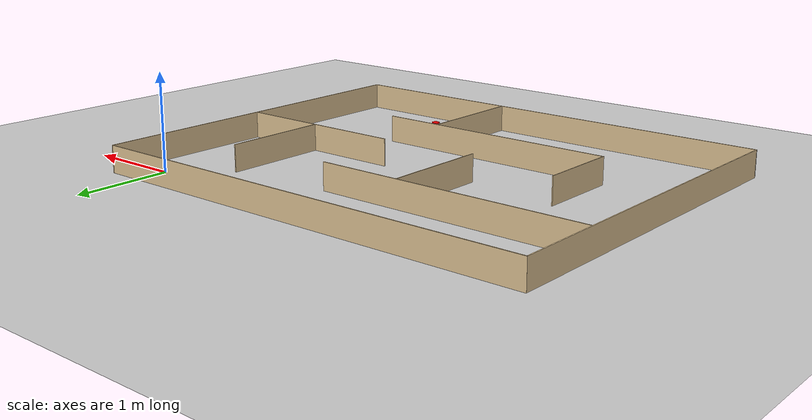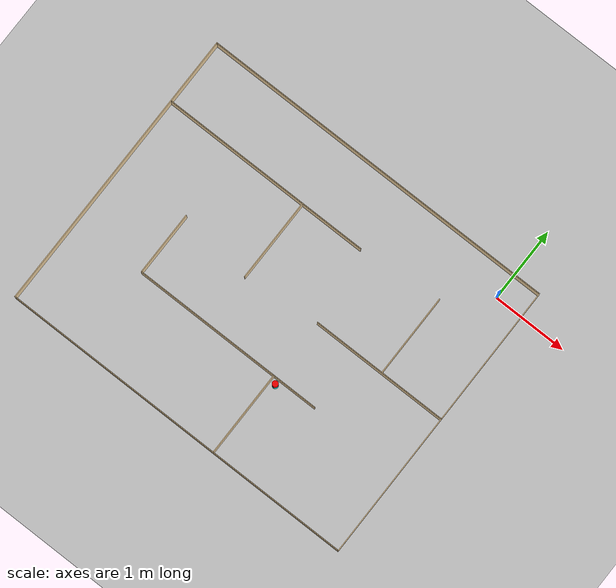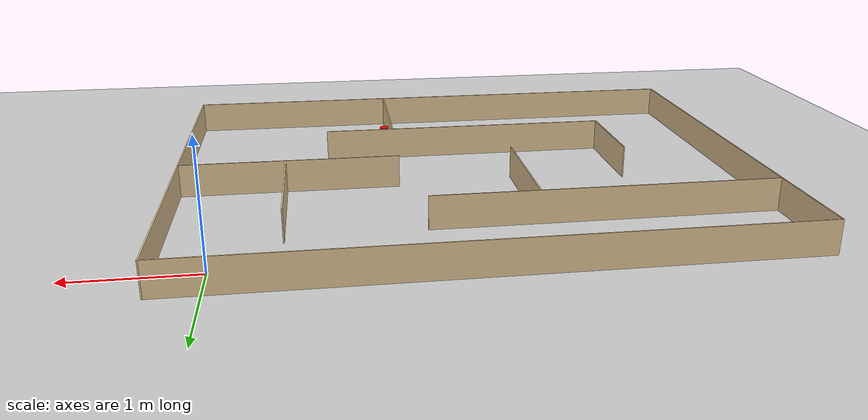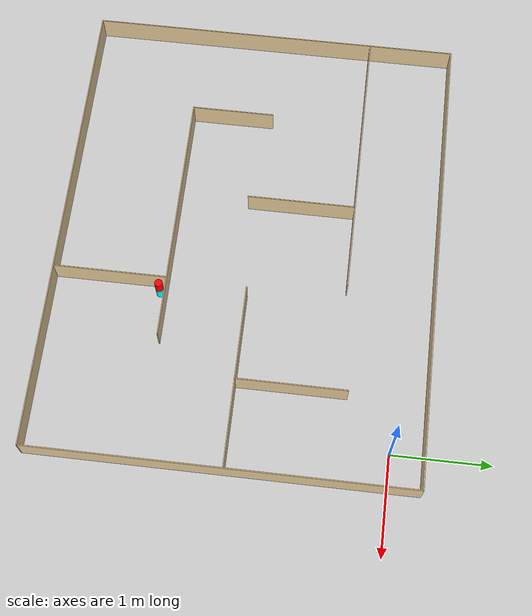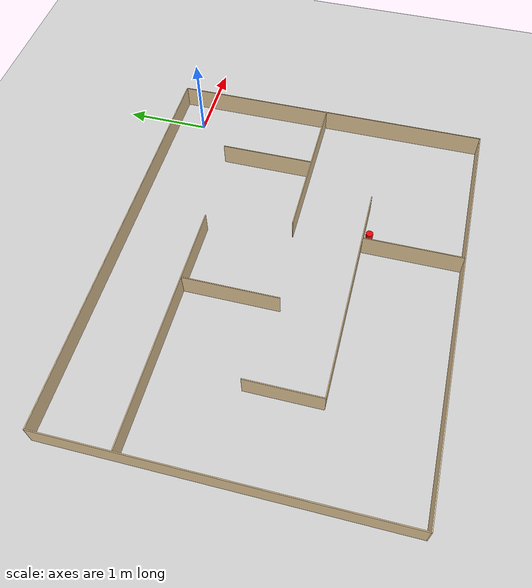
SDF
<sdf version="1.4">
  <world name="default">

    <scene>
      <ambient>0.4 0.4 0.4 1</ambient>
      <background>0.7 0.7 0.7 1</background>
      <shadows>true</shadows>
    </scene>

    <!-- A global light source -->
    <include>
      <uri>model://sun</uri>
    </include>

    <!-- A ground plane -->
    <include>
      <uri>model://ground_plane</uri>
    </include>

    <!-- My Maze -->
    <include>
      <uri>model://maze_2</uri>
	<pose>-2.05 -1.60 0 0 0 0</pose>
    </include>

    <!-- My Beacon -->
    <include>
      <uri>model://beacon_2</uri>
	<pose>-1.42 -2.44 0 0 0 0</pose>
    </include>

    <physics type="ode">
      <real_time_update_rate>1000.0</real_time_update_rate>
      <max_step_size>0.001</max_step_size>
      <real_time_factor>1</real_time_factor>
      <ode>
        <solver>
          <type>quick</type>
          <iters>150</iters>
          <precon_iters>0</precon_iters>
          <sor>1.400000</sor>
          <use_dynamic_moi_rescaling>1</use_dynamic_moi_rescaling>
        </solver>
        <constraints>
          <cfm>0.00001</cfm>
          <erp>0.2</erp>
          <contact_max_correcting_vel>2000.000000</contact_max_correcting_vel>
          <contact_surface_layer>0.01000</contact_surface_layer>
        </constraints>
      </ode>
    </physics>
  </world>

</sdf>

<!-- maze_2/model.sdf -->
<sdf version='1.6'>
  <model name='maze_2'>
    <link name='Wall_1'>
      <pose frame=''>0 -1.925 0 0 -0 0</pose>
      <self_collide>0</self_collide>
      <kinematic>0</kinematic>
      <visual name='Wall_1_Visual'>
        <pose frame=''>0 0 0.14 0 -0 0</pose>
        <geometry>
          <box>
            <size>4.86027 0.01 0.28</size>
          </box>
        </geometry>
        <material>
          <script>
            <uri>file://media/materials/scripts/gazebo.material</uri>
            <name>Gazebo/Grey</name>
          </script>
          <ambient>0.921569 0.807843 0.615686 1</ambient>
          <diffuse>0.7 0.7 0.7 1</diffuse>
          <specular>0.01 0.01 0.01 1</specular>
          <emissive>0 0 0 1</emissive>
        </material>
        <cast_shadows>1</cast_shadows>
        <transparency>0</transparency>
      </visual>
      <collision name='Wall_1_Collision'>
        <laser_retro>0</laser_retro>
        <max_contacts>10</max_contacts>
        <pose frame=''>0 0 0.14 0 -0 0</pose>
        <geometry>
          <box>
            <size>4.86027 0.01 0.28</size>
          </box>
        </geometry>
        <surface>
          <friction>
            <ode>
              <mu>1</mu>
              <mu2>1</mu2>
              <fdir1>0 0 0</fdir1>
              <slip1>0</slip1>
              <slip2>0</slip2>
            </ode>
            <torsional>
              <coefficient>1</coefficient>
              <patch_radius>0</patch_radius>
              <surface_radius>0</surface_radius>
              <use_patch_radius>1</use_patch_radius>
              <ode>
                <slip>0</slip>
              </ode>
            </torsional>
          </friction>
          <bounce>
            <restitution_coefficient>0</restitution_coefficient>
            <threshold>1e+06</threshold>
          </bounce>
          <contact>
            <collide_without_contact>0</collide_without_contact>
            <collide_without_contact_bitmask>1</collide_without_contact_bitmask>
            <collide_bitmask>1</collide_bitmask>
            <ode>
              <soft_cfm>0</soft_cfm>
              <soft_erp>0.2</soft_erp>
              <kp>1e+13</kp>
              <kd>1</kd>
              <max_vel>0.01</max_vel>
              <min_depth>0</min_depth>
            </ode>
            <bullet>
              <split_impulse>1</split_impulse>
              <split_impulse_penetration_threshold>-0.01</split_impulse_penetration_threshold>
              <soft_cfm>0</soft_cfm>
              <soft_erp>0.2</soft_erp>
              <kp>1e+13</kp>
              <kd>1</kd>
            </bullet>
          </contact>
        </surface>
      </collision>
    </link>
    <link name='Wall_10'>
      <pose frame=''>1.49951 0.041 0 0 -0 3.14159</pose>
      <self_collide>0</self_collide>
      <kinematic>0</kinematic>
      <visual name='Wall_10_Visual'>
        <pose frame=''>0 0 0.14 0 -0 0</pose>
        <geometry>
          <box>
            <size>1.86 0.01 0.28</size>
          </box>
        </geometry>
        <material>
          <script>
            <uri>file://media/materials/scripts/gazebo.material</uri>
            <name>Gazebo/Grey</name>
          </script>
          <ambient>0.921569 0.807843 0.615686 1</ambient>
          <diffuse>0.7 0.7 0.7 1</diffuse>
          <specular>0.01 0.01 0.01 1</specular>
          <emissive>0 0 0 1</emissive>
        </material>
        <cast_shadows>1</cast_shadows>
        <transparency>0</transparency>
      </visual>
      <collision name='Wall_10_Collision'>
        <laser_retro>0</laser_retro>
        <max_contacts>10</max_contacts>
        <pose frame=''>0 0 0.14 0 -0 0</pose>
        <geometry>
          <box>
            <size>1.86 0.01 0.28</size>
          </box>
        </geometry>
        <surface>
          <friction>
            <ode>
              <mu>1</mu>
              <mu2>1</mu2>
              <fdir1>0 0 0</fdir1>
              <slip1>0</slip1>
              <slip2>0</slip2>
            </ode>
            <torsional>
              <coefficient>1</coefficient>
              <patch_radius>0</patch_radius>
              <surface_radius>0</surface_radius>
              <use_patch_radius>1</use_patch_radius>
              <ode>
                <slip>0</slip>
              </ode>
            </torsional>
          </friction>
          <bounce>
            <restitution_coefficient>0</restitution_coefficient>
            <threshold>1e+06</threshold>
          </bounce>
          <contact>
            <collide_without_contact>0</collide_without_contact>
            <collide_without_contact_bitmask>1</collide_without_contact_bitmask>
            <collide_bitmask>1</collide_bitmask>
            <ode>
              <soft_cfm>0</soft_cfm>
              <soft_erp>0.2</soft_erp>
              <kp>1e+13</kp>
              <kd>1</kd>
              <max_vel>0.01</max_vel>
              <min_depth>0</min_depth>
            </ode>
            <bullet>
              <split_impulse>1</split_impulse>
              <split_impulse_penetration_threshold>-0.01</split_impulse_penetration_threshold>
              <soft_cfm>0</soft_cfm>
              <soft_erp>0.2</soft_erp>
              <kp>1e+13</kp>
              <kd>1</kd>
            </bullet>
          </contact>
        </surface>
      </collision>
    </link>
    <link name='Wall_12'>
      <pose frame=''>1.53594 0.594249 0 0 -0 1.5708</pose>
      <self_collide>0</self_collide>
      <kinematic>0</kinematic>
      <visual name='Wall_12_Visual'>
        <pose frame=''>0 0 0.14 0 -0 0</pose>
        <geometry>
          <box>
            <size>1.11 0.01 0.28</size>
          </box>
        </geometry>
        <material>
          <script>
            <uri>file://media/materials/scripts/gazebo.material</uri>
            <name>Gazebo/Grey</name>
          </script>
          <ambient>0.921569 0.807843 0.615686 1</ambient>
          <diffuse>0.7 0.7 0.7 1</diffuse>
          <specular>0.01 0.01 0.01 1</specular>
          <emissive>0 0 0 1</emissive>
        </material>
        <cast_shadows>1</cast_shadows>
        <transparency>0</transparency>
      </visual>
      <collision name='Wall_12_Collision'>
        <laser_retro>0</laser_retro>
        <max_contacts>10</max_contacts>
        <pose frame=''>0 0 0.14 0 -0 0</pose>
        <geometry>
          <box>
            <size>1.11 0.01 0.28</size>
          </box>
        </geometry>
        <surface>
          <friction>
            <ode>
              <mu>1</mu>
              <mu2>1</mu2>
              <fdir1>0 0 0</fdir1>
              <slip1>0</slip1>
              <slip2>0</slip2>
            </ode>
            <torsional>
              <coefficient>1</coefficient>
              <patch_radius>0</patch_radius>
              <surface_radius>0</surface_radius>
              <use_patch_radius>1</use_patch_radius>
              <ode>
                <slip>0</slip>
              </ode>
            </torsional>
          </friction>
          <bounce>
            <restitution_coefficient>0</restitution_coefficient>
            <threshold>1e+06</threshold>
          </bounce>
          <contact>
            <collide_without_contact>0</collide_without_contact>
            <collide_without_contact_bitmask>1</collide_without_contact_bitmask>
            <collide_bitmask>1</collide_bitmask>
            <ode>
              <soft_cfm>0</soft_cfm>
              <soft_erp>0.2</soft_erp>
              <kp>1e+13</kp>
              <kd>1</kd>
              <max_vel>0.01</max_vel>
              <min_depth>0</min_depth>
            </ode>
            <bullet>
              <split_impulse>1</split_impulse>
              <split_impulse_penetration_threshold>-0.01</split_impulse_penetration_threshold>
              <soft_cfm>0</soft_cfm>
              <soft_erp>0.2</soft_erp>
              <kp>1e+13</kp>
              <kd>1</kd>
            </bullet>
          </contact>
        </surface>
      </collision>
    </link>
    <link name='Wall_14'>
      <pose frame=''>-1.434 -0.346 0 0 0 -1.5708</pose>
      <self_collide>0</self_collide>
      <kinematic>0</kinematic>
      <visual name='Wall_14_Visual'>
        <pose frame=''>0 0 0.14 0 -0 0</pose>
        <geometry>
          <box>
            <size>0.859737 0.01 0.28</size>
          </box>
        </geometry>
        <material>
          <script>
            <uri>file://media/materials/scripts/gazebo.material</uri>
            <name>Gazebo/Grey</name>
          </script>
          <ambient>0.921569 0.807843 0.615686 1</ambient>
          <diffuse>0.7 0.7 0.7 1</diffuse>
          <specular>0.01 0.01 0.01 1</specular>
          <emissive>0 0 0 1</emissive>
        </material>
        <cast_shadows>1</cast_shadows>
        <transparency>0</transparency>
      </visual>
      <collision name='Wall_14_Collision'>
        <laser_retro>0</laser_retro>
        <max_contacts>10</max_contacts>
        <pose frame=''>0 0 0.14 0 -0 0</pose>
        <geometry>
          <box>
            <size>0.859737 0.01 0.28</size>
          </box>
        </geometry>
        <surface>
          <friction>
            <ode>
              <mu>1</mu>
              <mu2>1</mu2>
              <fdir1>0 0 0</fdir1>
              <slip1>0</slip1>
              <slip2>0</slip2>
            </ode>
            <torsional>
              <coefficient>1</coefficient>
              <patch_radius>0</patch_radius>
              <surface_radius>0</surface_radius>
              <use_patch_radius>1</use_patch_radius>
              <ode>
                <slip>0</slip>
              </ode>
            </torsional>
          </friction>
          <bounce>
            <restitution_coefficient>0</restitution_coefficient>
            <threshold>1e+06</threshold>
          </bounce>
          <contact>
            <collide_without_contact>0</collide_without_contact>
            <collide_without_contact_bitmask>1</collide_without_contact_bitmask>
            <collide_bitmask>1</collide_bitmask>
            <ode>
              <soft_cfm>0</soft_cfm>
              <soft_erp>0.2</soft_erp>
              <kp>1e+13</kp>
              <kd>1</kd>
              <max_vel>0.01</max_vel>
              <min_depth>0</min_depth>
            </ode>
            <bullet>
              <split_impulse>1</split_impulse>
              <split_impulse_penetration_threshold>-0.01</split_impulse_penetration_threshold>
              <soft_cfm>0</soft_cfm>
              <soft_erp>0.2</soft_erp>
              <kp>1e+13</kp>
              <kd>1</kd>
            </bullet>
          </contact>
        </surface>
      </collision>
    </link>
    <link name='Wall_17'>
      <pose frame=''>0.55442 -1.34744 -0 0 0 -1.5708</pose>
      <self_collide>0</self_collide>
      <kinematic>0</kinematic>
      <inertial>
        <inertia>
          <ixx>nan</ixx>
          <ixy>0</ixy>
          <ixz>0</ixz>
          <iyy>nan</iyy>
          <iyz>0</iyz>
          <izz>nan</izz>
        </inertia>
        <mass>0</mass>
        <pose frame=''>0 0 0 0 -0 0</pose>
      </inertial>
      <visual name='Wall_17_Visual'>
        <pose frame=''>0 0 0.14 0 -0 0</pose>
        <geometry>
          <box>
            <size>1.15797 0.01 0.28</size>
          </box>
        </geometry>
        <material>
          <script>
            <uri>file://media/materials/scripts/gazebo.material</uri>
            <name>Gazebo/Grey</name>
          </script>
          <ambient>0.921569 0.807843 0.615686 1</ambient>
          <diffuse>0.7 0.7 0.7 1</diffuse>
          <specular>0.01 0.01 0.01 1</specular>
          <emissive>0 0 0 1</emissive>
        </material>
        <cast_shadows>1</cast_shadows>
        <transparency>0</transparency>
      </visual>
      <collision name='Wall_17_Collision'>
        <laser_retro>0</laser_retro>
        <max_contacts>10</max_contacts>
        <pose frame=''>0 0 0.14 0 -0 0</pose>
        <geometry>
          <box>
            <size>1.15797 0.01 0.28</size>
          </box>
        </geometry>
        <surface>
          <friction>
            <ode>
              <mu>1</mu>
              <mu2>1</mu2>
              <fdir1>0 0 0</fdir1>
              <slip1>0</slip1>
              <slip2>0</slip2>
            </ode>
            <torsional>
              <coefficient>1</coefficient>
              <patch_radius>0</patch_radius>
              <surface_radius>0</surface_radius>
              <use_patch_radius>1</use_patch_radius>
              <ode>
                <slip>0</slip>
              </ode>
            </torsional>
          </friction>
          <bounce>
            <restitution_coefficient>0</restitution_coefficient>
            <threshold>1e+06</threshold>
          </bounce>
          <contact>
            <collide_without_contact>0</collide_without_contact>
            <collide_without_contact_bitmask>1</collide_without_contact_bitmask>
            <collide_bitmask>1</collide_bitmask>
            <ode>
              <soft_cfm>0</soft_cfm>
              <soft_erp>0.2</soft_erp>
              <kp>1e+13</kp>
              <kd>1</kd>
              <max_vel>0.01</max_vel>
              <min_depth>0</min_depth>
            </ode>
            <bullet>
              <split_impulse>1</split_impulse>
              <split_impulse_penetration_threshold>-0.01</split_impulse_penetration_threshold>
              <soft_cfm>0</soft_cfm>
              <soft_erp>0.2</soft_erp>
              <kp>1e+13</kp>
              <kd>1</kd>
            </bullet>
          </contact>
        </surface>
      </collision>
    </link>
    <link name='Wall_19'>
      <pose frame=''>-0.134 -0.771 0 0 -0 0</pose>
      <self_collide>0</self_collide>
      <kinematic>0</kinematic>
      <visual name='Wall_19_Visual'>
        <pose frame=''>0 0 0.14 0 -0 0</pose>
        <geometry>
          <box>
            <size>2.60982 0.01 0.28</size>
          </box>
        </geometry>
        <material>
          <script>
            <uri>file://media/materials/scripts/gazebo.material</uri>
            <name>Gazebo/Grey</name>
          </script>
          <ambient>0.921569 0.807843 0.615686 1</ambient>
          <diffuse>0.7 0.7 0.7 1</diffuse>
          <specular>0.01 0.01 0.01 1</specular>
          <emissive>0 0 0 1</emissive>
        </material>
        <cast_shadows>1</cast_shadows>
        <transparency>0</transparency>
      </visual>
      <collision name='Wall_19_Collision'>
        <laser_retro>0</laser_retro>
        <max_contacts>10</max_contacts>
        <pose frame=''>0 0 0.14 0 -0 0</pose>
        <geometry>
          <box>
            <size>2.60982 0.01 0.28</size>
          </box>
        </geometry>
        <surface>
          <friction>
            <ode>
              <mu>1</mu>
              <mu2>1</mu2>
              <fdir1>0 0 0</fdir1>
              <slip1>0</slip1>
              <slip2>0</slip2>
            </ode>
            <torsional>
              <coefficient>1</coefficient>
              <patch_radius>0</patch_radius>
              <surface_radius>0</surface_radius>
              <use_patch_radius>1</use_patch_radius>
              <ode>
                <slip>0</slip>
              </ode>
            </torsional>
          </friction>
          <bounce>
            <restitution_coefficient>0</restitution_coefficient>
            <threshold>1e+06</threshold>
          </bounce>
          <contact>
            <collide_without_contact>0</collide_without_contact>
            <collide_without_contact_bitmask>1</collide_without_contact_bitmask>
            <collide_bitmask>1</collide_bitmask>
            <ode>
              <soft_cfm>0</soft_cfm>
              <soft_erp>0.2</soft_erp>
              <kp>1e+13</kp>
              <kd>1</kd>
              <max_vel>0.01</max_vel>
              <min_depth>0</min_depth>
            </ode>
            <bullet>
              <split_impulse>1</split_impulse>
              <split_impulse_penetration_threshold>-0.01</split_impulse_penetration_threshold>
              <soft_cfm>0</soft_cfm>
              <soft_erp>0.2</soft_erp>
              <kp>1e+13</kp>
              <kd>1</kd>
            </bullet>
          </contact>
        </surface>
      </collision>
    </link>
    <link name='Wall_2'>
      <pose frame=''>2.425 0 0 0 -0 1.5708</pose>
      <self_collide>0</self_collide>
      <kinematic>0</kinematic>
      <visual name='Wall_2_Visual'>
        <pose frame=''>0 0 0.14 0 -0 0</pose>
        <geometry>
          <box>
            <size>3.86 0.01 0.28</size>
          </box>
        </geometry>
        <material>
          <script>
            <uri>file://media/materials/scripts/gazebo.material</uri>
            <name>Gazebo/Grey</name>
          </script>
          <ambient>0.921569 0.807843 0.615686 1</ambient>
          <diffuse>0.7 0.7 0.7 1</diffuse>
          <specular>0.01 0.01 0.01 1</specular>
          <emissive>0 0 0 1</emissive>
        </material>
        <cast_shadows>1</cast_shadows>
        <transparency>0</transparency>
      </visual>
      <collision name='Wall_2_Collision'>
        <laser_retro>0</laser_retro>
        <max_contacts>10</max_contacts>
        <pose frame=''>0 0 0.14 0 -0 0</pose>
        <geometry>
          <box>
            <size>3.86 0.01 0.28</size>
          </box>
        </geometry>
        <surface>
          <friction>
            <ode>
              <mu>1</mu>
              <mu2>1</mu2>
              <fdir1>0 0 0</fdir1>
              <slip1>0</slip1>
              <slip2>0</slip2>
            </ode>
            <torsional>
              <coefficient>1</coefficient>
              <patch_radius>0</patch_radius>
              <surface_radius>0</surface_radius>
              <use_patch_radius>1</use_patch_radius>
              <ode>
                <slip>0</slip>
              </ode>
            </torsional>
          </friction>
          <bounce>
            <restitution_coefficient>0</restitution_coefficient>
            <threshold>1e+06</threshold>
          </bounce>
          <contact>
            <collide_without_contact>0</collide_without_contact>
            <collide_without_contact_bitmask>1</collide_without_contact_bitmask>
            <collide_bitmask>1</collide_bitmask>
            <ode>
              <soft_cfm>0</soft_cfm>
              <soft_erp>0.2</soft_erp>
              <kp>1e+13</kp>
              <kd>1</kd>
              <max_vel>0.01</max_vel>
              <min_depth>0</min_depth>
            </ode>
            <bullet>
              <split_impulse>1</split_impulse>
              <split_impulse_penetration_threshold>-0.01</split_impulse_penetration_threshold>
              <soft_cfm>0</soft_cfm>
              <soft_erp>0.2</soft_erp>
              <kp>1e+13</kp>
              <kd>1</kd>
            </bullet>
          </contact>
        </surface>
      </collision>
    </link>
    <link name='Wall_3'>
      <pose frame=''>0 1.925 0 0 -0 3.14159</pose>
      <self_collide>0</self_collide>
      <kinematic>0</kinematic>
      <visual name='Wall_3_Visual'>
        <pose frame=''>0 0 0.14 0 -0 0</pose>
        <geometry>
          <box>
            <size>4.85973 0.01 0.28</size>
          </box>
        </geometry>
        <material>
          <script>
            <uri>file://media/materials/scripts/gazebo.material</uri>
            <name>Gazebo/Grey</name>
          </script>
          <ambient>0.921569 0.807843 0.615686 1</ambient>
          <diffuse>0.7 0.7 0.7 1</diffuse>
          <specular>0.01 0.01 0.01 1</specular>
          <emissive>0 0 0 1</emissive>
        </material>
        <cast_shadows>1</cast_shadows>
        <transparency>0</transparency>
      </visual>
      <collision name='Wall_3_Collision'>
        <laser_retro>0</laser_retro>
        <max_contacts>10</max_contacts>
        <pose frame=''>0 0 0.14 0 -0 0</pose>
        <geometry>
          <box>
            <size>4.85973 0.01 0.28</size>
          </box>
        </geometry>
        <surface>
          <friction>
            <ode>
              <mu>1</mu>
              <mu2>1</mu2>
              <fdir1>0 0 0</fdir1>
              <slip1>0</slip1>
              <slip2>0</slip2>
            </ode>
            <torsional>
              <coefficient>1</coefficient>
              <patch_radius>0</patch_radius>
              <surface_radius>0</surface_radius>
              <use_patch_radius>1</use_patch_radius>
              <ode>
                <slip>0</slip>
              </ode>
            </torsional>
          </friction>
          <bounce>
            <restitution_coefficient>0</restitution_coefficient>
            <threshold>1e+06</threshold>
          </bounce>
          <contact>
            <collide_without_contact>0</collide_without_contact>
            <collide_without_contact_bitmask>1</collide_without_contact_bitmask>
            <collide_bitmask>1</collide_bitmask>
            <ode>
              <soft_cfm>0</soft_cfm>
              <soft_erp>0.2</soft_erp>
              <kp>1e+13</kp>
              <kd>1</kd>
              <max_vel>0.01</max_vel>
              <min_depth>0</min_depth>
            </ode>
            <bullet>
              <split_impulse>1</split_impulse>
              <split_impulse_penetration_threshold>-0.01</split_impulse_penetration_threshold>
              <soft_cfm>0</soft_cfm>
              <soft_erp>0.2</soft_erp>
              <kp>1e+13</kp>
              <kd>1</kd>
            </bullet>
          </contact>
        </surface>
      </collision>
    </link>
    <link name='Wall_4'>
      <pose frame=''>-2.425 0 0 0 0 -1.5708</pose>
      <self_collide>0</self_collide>
      <kinematic>0</kinematic>
      <visual name='Wall_4_Visual'>
        <pose frame=''>0 0 0.14 0 -0 0</pose>
        <geometry>
          <box>
            <size>3.85952 0.01 0.28</size>
          </box>
        </geometry>
        <material>
          <script>
            <uri>file://media/materials/scripts/gazebo.material</uri>
            <name>Gazebo/Grey</name>
          </script>
          <ambient>0.921569 0.807843 0.615686 1</ambient>
          <diffuse>0.7 0.7 0.7 1</diffuse>
          <specular>0.01 0.01 0.01 1</specular>
          <emissive>0 0 0 1</emissive>
        </material>
        <cast_shadows>1</cast_shadows>
        <transparency>0</transparency>
      </visual>
      <collision name='Wall_4_Collision'>
        <laser_retro>0</laser_retro>
        <max_contacts>10</max_contacts>
        <pose frame=''>0 0 0.14 0 -0 0</pose>
        <geometry>
          <box>
            <size>3.85952 0.01 0.28</size>
          </box>
        </geometry>
        <surface>
          <friction>
            <ode>
              <mu>1</mu>
              <mu2>1</mu2>
              <fdir1>0 0 0</fdir1>
              <slip1>0</slip1>
              <slip2>0</slip2>
            </ode>
            <torsional>
              <coefficient>1</coefficient>
              <patch_radius>0</patch_radius>
              <surface_radius>0</surface_radius>
              <use_patch_radius>1</use_patch_radius>
              <ode>
                <slip>0</slip>
              </ode>
            </torsional>
          </friction>
          <bounce>
            <restitution_coefficient>0</restitution_coefficient>
            <threshold>1e+06</threshold>
          </bounce>
          <contact>
            <collide_without_contact>0</collide_without_contact>
            <collide_without_contact_bitmask>1</collide_without_contact_bitmask>
            <collide_bitmask>1</collide_bitmask>
            <ode>
              <soft_cfm>0</soft_cfm>
              <soft_erp>0.2</soft_erp>
              <kp>1e+13</kp>
              <kd>1</kd>
              <max_vel>0.01</max_vel>
              <min_depth>0</min_depth>
            </ode>
            <bullet>
              <split_impulse>1</split_impulse>
              <split_impulse_penetration_threshold>-0.01</split_impulse_penetration_threshold>
              <soft_cfm>0</soft_cfm>
              <soft_erp>0.2</soft_erp>
              <kp>1e+13</kp>
              <kd>1</kd>
            </bullet>
          </contact>
        </surface>
      </collision>
    </link>
    <link name='Wall_6'>
      <pose frame=''>-0.990759 1.04323 0 0 -0 0</pose>
      <self_collide>0</self_collide>
      <kinematic>0</kinematic>
      <visual name='Wall_6_Visual'>
        <pose frame=''>0 0 0.14 0 -0 0</pose>
        <geometry>
          <box>
            <size>2.86 0.01 0.28</size>
          </box>
        </geometry>
        <material>
          <script>
            <uri>file://media/materials/scripts/gazebo.material</uri>
            <name>Gazebo/Grey</name>
          </script>
          <ambient>0.921569 0.807843 0.615686 1</ambient>
          <diffuse>0.7 0.7 0.7 1</diffuse>
          <specular>0.01 0.01 0.01 1</specular>
          <emissive>0 0 0 1</emissive>
        </material>
        <cast_shadows>1</cast_shadows>
        <transparency>0</transparency>
      </visual>
      <collision name='Wall_6_Collision'>
        <laser_retro>0</laser_retro>
        <max_contacts>10</max_contacts>
        <pose frame=''>0 0 0.14 0 -0 0</pose>
        <geometry>
          <box>
            <size>2.86 0.01 0.28</size>
          </box>
        </geometry>
        <surface>
          <friction>
            <ode>
              <mu>1</mu>
              <mu2>1</mu2>
              <fdir1>0 0 0</fdir1>
              <slip1>0</slip1>
              <slip2>0</slip2>
            </ode>
            <torsional>
              <coefficient>1</coefficient>
              <patch_radius>0</patch_radius>
              <surface_radius>0</surface_radius>
              <use_patch_radius>1</use_patch_radius>
              <ode>
                <slip>0</slip>
              </ode>
            </torsional>
          </friction>
          <bounce>
            <restitution_coefficient>0</restitution_coefficient>
            <threshold>1e+06</threshold>
          </bounce>
          <contact>
            <collide_without_contact>0</collide_without_contact>
            <collide_without_contact_bitmask>1</collide_without_contact_bitmask>
            <collide_bitmask>1</collide_bitmask>
            <ode>
              <soft_cfm>0</soft_cfm>
              <soft_erp>0.2</soft_erp>
              <kp>1e+13</kp>
              <kd>1</kd>
              <max_vel>0.01</max_vel>
              <min_depth>0</min_depth>
            </ode>
            <bullet>
              <split_impulse>1</split_impulse>
              <split_impulse_penetration_threshold>-0.01</split_impulse_penetration_threshold>
              <soft_cfm>0</soft_cfm>
              <soft_erp>0.2</soft_erp>
              <kp>1e+13</kp>
              <kd>1</kd>
            </bullet>
          </contact>
        </surface>
      </collision>
    </link>
    <link name='Wall_8'>
      <pose frame=''>-0.439251 0.487993 0 0 0 -1.5708</pose>
      <self_collide>0</self_collide>
      <kinematic>0</kinematic>
      <visual name='Wall_8_Visual'>
        <pose frame=''>0 0 0.14 0 -0 0</pose>
        <geometry>
          <box>
            <size>1.11 0.01 0.28</size>
          </box>
        </geometry>
        <material>
          <script>
            <uri>file://media/materials/scripts/gazebo.material</uri>
            <name>Gazebo/Grey</name>
          </script>
          <ambient>0.921569 0.807843 0.615686 1</ambient>
          <diffuse>0.7 0.7 0.7 1</diffuse>
          <specular>0.01 0.01 0.01 1</specular>
          <emissive>0 0 0 1</emissive>
        </material>
        <cast_shadows>1</cast_shadows>
        <transparency>0</transparency>
      </visual>
      <collision name='Wall_8_Collision'>
        <laser_retro>0</laser_retro>
        <max_contacts>10</max_contacts>
        <pose frame=''>0 0 0.14 0 -0 0</pose>
        <geometry>
          <box>
            <size>1.11 0.01 0.28</size>
          </box>
        </geometry>
        <surface>
          <friction>
            <ode>
              <mu>1</mu>
              <mu2>1</mu2>
              <fdir1>0 0 0</fdir1>
              <slip1>0</slip1>
              <slip2>0</slip2>
            </ode>
            <torsional>
              <coefficient>1</coefficient>
              <patch_radius>0</patch_radius>
              <surface_radius>0</surface_radius>
              <use_patch_radius>1</use_patch_radius>
              <ode>
                <slip>0</slip>
              </ode>
            </torsional>
          </friction>
          <bounce>
            <restitution_coefficient>0</restitution_coefficient>
            <threshold>1e+06</threshold>
          </bounce>
          <contact>
            <collide_without_contact>0</collide_without_contact>
            <collide_without_contact_bitmask>1</collide_without_contact_bitmask>
            <collide_bitmask>1</collide_bitmask>
            <ode>
              <soft_cfm>0</soft_cfm>
              <soft_erp>0.2</soft_erp>
              <kp>1e+13</kp>
              <kd>1</kd>
              <max_vel>0.01</max_vel>
              <min_depth>0</min_depth>
            </ode>
            <bullet>
              <split_impulse>1</split_impulse>
              <split_impulse_penetration_threshold>-0.01</split_impulse_penetration_threshold>
              <soft_cfm>0</soft_cfm>
              <soft_erp>0.2</soft_erp>
              <kp>1e+13</kp>
              <kd>1</kd>
            </bullet>
          </contact>
        </surface>
      </collision>
    </link>
    <static>1</static>
    <allow_auto_disable>1</allow_auto_disable>
  </model>
</sdf>

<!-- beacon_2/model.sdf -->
<sdf version='1.4'>
  <model name="beacon_2">
	<static>true</static>
          <link name='chassis_lower'>
            <pose>0 0 0.07 0 0 0</pose>

            <collision name='collision'>
              <geometry>
                <cylinder>
                  <radius>.04</radius>
		  <length>.140</length>
                </cylinder>
              </geometry>
            </collision>

            <visual name='visual'>
              <geometry>
                <cylinder>
                  <radius>.04</radius>
		  <length>.140</length>
                </cylinder>
              </geometry>
        	<material>
          	  <ambient>0 1 1 1</ambient>
          	  <diffuse>0 1 1 1</diffuse>
          	  <specular>0.1 0.1 0.1 1</specular>
         	  <emissive>0 0 0 0</emissive>
        	</material>
            </visual>
          </link>

          <link name='chassis_upper'>
            <pose>0 0 0.21 0 0 0</pose>

            <collision name='collision'>
              <geometry>
                <cylinder>
                  <radius>.04</radius>
		  <length>.140</length>
                </cylinder>
              </geometry>
            </collision>

            <visual name='visual'>
              <geometry>
                <cylinder>
                  <radius>.04</radius>
		  <length>.140</length>
                </cylinder>
              </geometry>
        	<material>
          	  <ambient>1 0 0 1</ambient>
          	  <diffuse>1 0 0 1</diffuse>
          	  <specular>0.1 0.1 0.1 1</specular>
         	  <emissive>0 0 0 0</emissive>
        	</material>
            </visual>
          </link>

  </model>
</sdf>
